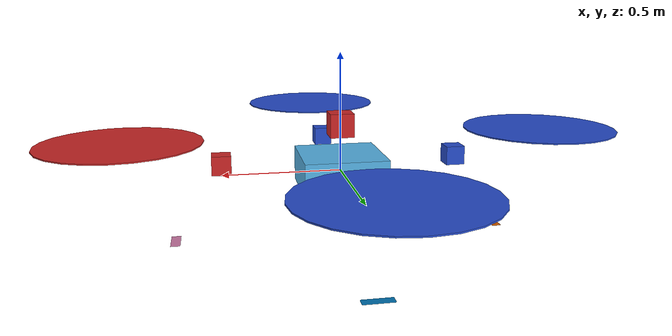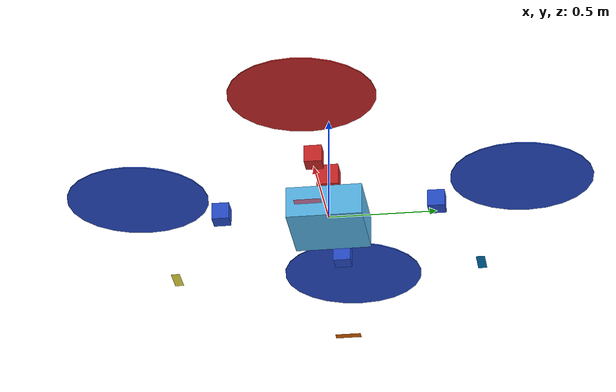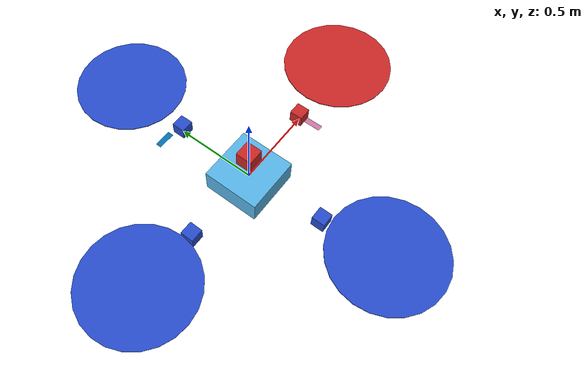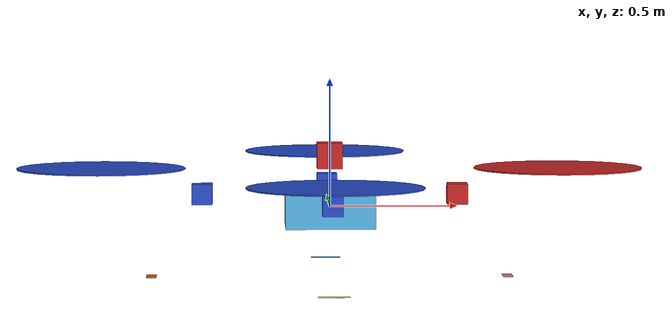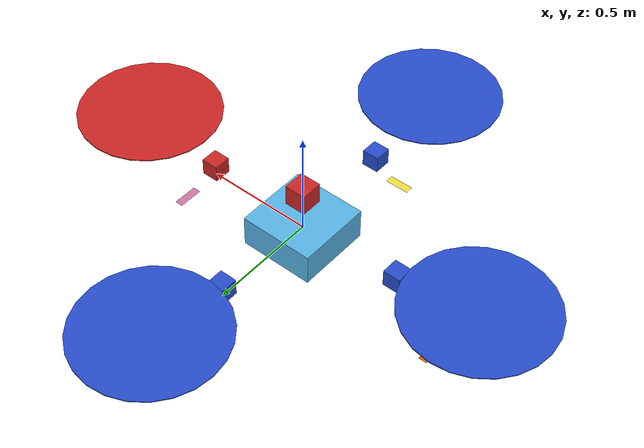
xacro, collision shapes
<?xml version="1.0"?>

<robot name="morus" xmlns:xacro="http://ros.org/wiki/xacro">
  <!-- Properties -->
  <xacro:arg name="name" default="drone" />
  <xacro:arg name="scale" default="1.0" />
  <xacro:arg name="base_link_name" default="base_link" />
  <xacro:arg name="tf_prefix" default="" />
  <xacro:property name="tf_prefix" value="$(arg tf_prefix)" />
  <xacro:property name="base_link_name" value="$(arg base_link_name)" />
  <xacro:property name="scale_factor" value="$(arg scale)" />

  <xacro:property name="rotor_velocity_slowdown_sim" value="10" />
  <xacro:arg name="custom_mesh_file" default="morus_uav_final.dae" />
  <xacro:property name="mesh_file" value="$(arg custom_mesh_file)" />
  <xacro:property name="mesh_file_mass" value="MORUS_mass.dae" />
  <xacro:property name="mass" value="${1 * scale_factor}" />  <!-- [kg] -->

  <xacro:property name="body_width" value="${0.35 * scale_factor}" />
  <xacro:property name="body_height" value="${0.15 * scale_factor}" />
  <xacro:property name="mass_rotor" value="${0.2 * scale_factor}" /> <!-- [kg] -->
  <xacro:property name="arm_length" value="${0.65 * scale_factor}" />
  <xacro:property name="arm_offset" value="${0.175 * scale_factor}" />
  <xacro:property name="prop_ver_offset" value="${0.15 * scale_factor}" />
  <xacro:property name="prop_long_offset" value="${0.07 * scale_factor}" />

  <xacro:property name="radius_rotor" value="${0.33 * scale_factor}" />
  <xacro:property name="motor_constant" value="${0.000456874 * scale_factor}" /> <!-- [kg*m/s^2] -->
  <xacro:property name="moment_constant" value="${0.025 * scale_factor}" />
  <xacro:property name="time_constant_up" value="0.2" />
  <xacro:property name="time_constant_down" value="0.2" />
  <xacro:property name="max_rot_velocity" value="838" /> <!-- [rad/s] -->

  <xacro:property name="rotor_drag_coefficient" value="0.0" />
  <xacro:property name="rolling_moment_coefficient" value="0.00001" />

  <xacro:property name="movable_mass_mass" value="${1 * scale_factor}" />
  <xacro:property name="movable_mass_dimension" value="${0.08 * scale_factor}" />
  <xacro:property name="movable_mass_offset" value="${0.05 * scale_factor}" />

  <xacro:property name="imu_mass" value="${0.02 * scale_factor}"/>
  <xacro:property name="imu_size" value="${0.01 * scale_factor}"/>

  <xacro:property name="sin45" value="0.7071" />
  <xacro:property name="cos45" value="0.7071" />
  <xacro:property name="PI" value="3.14" />

  <!-- Property Blocks -->
  <xacro:property name="body_inertia">
    <!--inertia ixx="8.66" ixy="0.0" ixz="0.0" iyy="8.66" iyz="0.0" izz="12.0" /!-->
    <inertia ixx="5.5" ixy="0.0" ixz="0.0" iyy="5.5" iyz="0.0" izz="6.5" />
  </xacro:property>
  <!-- inertia of a single rotor, assuming it is a cuboid. Height=3mm, width=15mm -->
  <xacro:property name="rotor_inertia">
    <inertia
    ixx="${1/12 * mass_rotor * (0.015 * 0.015 + 0.003 * 0.003) * rotor_velocity_slowdown_sim}"
    iyy="${1/12 * mass_rotor * (4 * radius_rotor * radius_rotor + 0.003 * 0.003) * rotor_velocity_slowdown_sim}"
    izz="${1/12 * mass_rotor * (4 * radius_rotor * radius_rotor + 0.015 * 0.015) * rotor_velocity_slowdown_sim}"
    ixy="0.0" ixz="0.0"  iyz="0.0" /> <!-- [kg*m^2] [kg*m^2] [kg*m^2] [kg*m^2] [kg*m^2] [kg*m^2] -->
  </xacro:property>

  <!-- inertia of a movable mass, assuming it is a cube. The formula is I=ms^2/6 where "s" is length of one side
   of the cube and "m" is its mass-->

  <xacro:property name="movable_mass_inertia">
     <inertia
     ixx="${(movable_mass_mass * movable_mass_dimension * movable_mass_dimension)/6}"
     iyy="${(movable_mass_mass * movable_mass_dimension * movable_mass_dimension)/6}"
     izz="${(movable_mass_mass * movable_mass_dimension * movable_mass_dimension)/6}"
     ixy="0.0" ixz="0.0"  iyz="0.0" /> <!-- [kg*m^2] [kg*m^2] [kg*m^2] [kg*m^2] [kg*m^2] [kg*m^2] -->
  </xacro:property>

  <xacro:property name="imu_inertia">
    <inertia
    ixx="${(imu_mass * imu_size * imu_size)/6}"
    iyy="${(imu_mass * imu_size * imu_size)/6}"
    izz="${(imu_mass * imu_size * imu_size)/6}"
    ixy="0.0" ixz="0.0"  iyz="0.0" /> <!-- [kg*m^2] [kg*m^2] [kg*m^2] [kg*m^2] [kg*m^2] [kg*m^2] -->
  </xacro:property>

  <!-- Included URDF Files -->
  <xacro:include filename="$(find morus_description)/urdf/multirotor_base.urdf.xacro" />

  <!-- Instantiate multirotor_base_macro once-->
  <xacro:multirotor_base_macro
    robot_namespace="$(arg name)"
    mass="${mass}"
    body_width="${body_width}"
    body_height="${body_height}"
    mesh_file="${mesh_file}"
    mesh_file_mass="${mesh_file_mass}"
    scale_factor="${scale_factor}"
    base_link_name="${base_link_name}"
    tf_prefix="${tf_prefix}">
    <xacro:insert_block name="body_inertia" />
  </xacro:multirotor_base_macro>

 <!-- Instantiate rotors -->
  <xacro:vertical_rotor
    robot_namespace="$(arg name)"
    suffix="front"
    direction="cw"
    motor_constant="${motor_constant}"
    moment_constant="${moment_constant}"
    parent="${base_link_name}"
    tf_prefix="${tf_prefix}"
    mass_rotor="${mass_rotor}"
    radius_rotor="${radius_rotor}"
    time_constant_up="${time_constant_up}"
    time_constant_down="${time_constant_down}"
    max_rot_velocity="${max_rot_velocity}"
    motor_number="0"
    rotor_drag_coefficient="${rotor_drag_coefficient}"
    rolling_moment_coefficient="${rolling_moment_coefficient}"
    color="Red">
    <origin xyz="${arm_length+prop_long_offset+arm_offset} 0 ${prop_ver_offset}" rpy="0 0 0" />
    <xacro:insert_block name="rotor_inertia" />
  </xacro:vertical_rotor>

  <xacro:vertical_rotor
    robot_namespace="$(arg name)"
    suffix="left"
    direction="ccw"
    motor_constant="${motor_constant}"
    moment_constant="${moment_constant}"
    parent="${base_link_name}"
    tf_prefix="${tf_prefix}"
    mass_rotor="${mass_rotor}"
    radius_rotor="${radius_rotor}"
    time_constant_up="${time_constant_up}"
    time_constant_down="${time_constant_down}"
    max_rot_velocity="${max_rot_velocity}"
    motor_number="1"
    rotor_drag_coefficient="${rotor_drag_coefficient}"
    rolling_moment_coefficient="${rolling_moment_coefficient}"
    color="Blue">
    <origin xyz="0 ${arm_length+prop_long_offset+arm_offset} ${prop_ver_offset}" rpy="0 0 0" />
    <xacro:insert_block name="rotor_inertia" />
  </xacro:vertical_rotor>

  <xacro:vertical_rotor
    robot_namespace="$(arg name)"
    suffix="back"
    direction="cw"
    motor_constant="${motor_constant}"
    moment_constant="${moment_constant}"
    parent="${base_link_name}"
    tf_prefix="${tf_prefix}"
    mass_rotor="${mass_rotor}"
    radius_rotor="${radius_rotor}"
    time_constant_up="${time_constant_up}"
    time_constant_down="${time_constant_down}"
    max_rot_velocity="${max_rot_velocity}"
    motor_number="2"
    rotor_drag_coefficient="${rotor_drag_coefficient}"
    rolling_moment_coefficient="${rolling_moment_coefficient}"
    color="Blue">
    <origin xyz="${-(arm_length+prop_long_offset+arm_offset)} 0 ${prop_ver_offset}" rpy="0 0 0" />
    <xacro:insert_block name="rotor_inertia" />
  </xacro:vertical_rotor>

  <xacro:vertical_rotor
    robot_namespace="$(arg name)"
    suffix="right"
    direction="ccw"
    motor_constant="${motor_constant}"
    moment_constant="${moment_constant}"
    parent="${base_link_name}"
    tf_prefix="${tf_prefix}"
    mass_rotor="${mass_rotor}"
    radius_rotor="${radius_rotor}"
    time_constant_up="${time_constant_up}"
    time_constant_down="${time_constant_down}"
    max_rot_velocity="${max_rot_velocity}"
    motor_number="3"
    rotor_drag_coefficient="${rotor_drag_coefficient}"
    rolling_moment_coefficient="${rolling_moment_coefficient}"
    color="Blue">
    <origin xyz="0 ${-(arm_length+prop_long_offset+arm_offset)} ${prop_ver_offset}" rpy="0 0 0" />
    <xacro:insert_block name="rotor_inertia" />
  </xacro:vertical_rotor>

  <!-- Instantiate movable mass 0-->
  <xacro:movable_mass
    mass_number="0"
    parent="${base_link_name}"
    tf_prefix="${tf_prefix}"
    mass="${movable_mass_mass}"
    dimension="${movable_mass_dimension}"
    color="Red"
    x_axis="1"
    y_axis="0"
    z_axis="0"
    orientation="${PI}">
    <origin xyz="${(arm_length/2+arm_offset)} 0.0 ${movable_mass_offset}" rpy="0 0 0" />
    <xacro:insert_block name="movable_mass_inertia"/>
  </xacro:movable_mass>

  <!-- Instantiate movable mass 1 -->
  <xacro:movable_mass
    mass_number="1"
    parent="${base_link_name}"
    tf_prefix="${tf_prefix}"
    mass="${movable_mass_mass}"
    dimension="${movable_mass_dimension}"
    color="Blue"
    x_axis="0"
    y_axis="1"
    z_axis="0"
    orientation="${PI/2}">
    <origin xyz="0.0 ${(arm_length/2+arm_offset)} ${movable_mass_offset}" rpy="0 0 0" />
    <xacro:insert_block name="movable_mass_inertia"/>
  </xacro:movable_mass>

  <!-- Instantiate movable mass 2-->
  <xacro:movable_mass
    mass_number="2"
    parent="${base_link_name}"
    tf_prefix="${tf_prefix}"
    mass="${movable_mass_mass}"
    dimension="${movable_mass_dimension}"
    color="Blue"
    x_axis="-1"
    y_axis="0"
    z_axis="0"
    orientation="${PI}">
    <origin xyz="${-(arm_length/2+arm_offset)} 0.0 ${movable_mass_offset}" rpy="0 0 0" />
    <xacro:insert_block name="movable_mass_inertia"/>
  </xacro:movable_mass>

  <!-- Instantiate movable mass 3 -->
  <xacro:movable_mass
    mass_number="3"
    parent="${base_link_name}"
    tf_prefix="${tf_prefix}"
    mass="${movable_mass_mass}"
    dimension="${movable_mass_dimension}"
    color="Blue"
    x_axis="0"
    y_axis="-1"
    z_axis="0"
    orientation="${PI/2}">
    <origin xyz="0.0 ${-(arm_length/2+arm_offset)} ${movable_mass_offset}" rpy="0 0 0" />
    <xacro:insert_block name="movable_mass_inertia"/>
  </xacro:movable_mass>

  <xacro:transmisija
    trans_number="0"
    joint_name="stick_to_movable_mass_0">
  </xacro:transmisija>

  <xacro:transmisija
    trans_number="1"
    joint_name="stick_to_movable_mass_1">
  </xacro:transmisija>

  <xacro:transmisija
    trans_number="2"
    joint_name="stick_to_movable_mass_2">
  </xacro:transmisija>

  <xacro:transmisija
    trans_number="3"
    joint_name="stick_to_movable_mass_3">
  </xacro:transmisija>

  <xacro:property name="land_gear_inertia">
    <inertia
    ixx="1e-6"
    iyy="1e-6"
    izz="1e-6"
    ixy="0.0" ixz="0.0"  iyz="0.0" /> <!-- [kg*m^2] [kg*m^2] [kg*m^2] [kg*m^2] [kg*m^2] [kg*m^2] -->
  </xacro:property>

  <xacro:landing_gear
      parent="${base_link_name}"
      tf_prefix="${tf_prefix}"
      gear_num = "1"
      mass = "${1e-6 * scale_factor}"
      dim_x = "${0.12 * scale_factor}"
      dim_y = "${0.04 * scale_factor}"
      dim_z = "${0.0001 * scale_factor}">
      <origin xyz="0 ${-0.7 * scale_factor} ${-0.275 * scale_factor}" rpy="0 0 0" />
      <xacro:insert_block name="land_gear_inertia"/>
  </xacro:landing_gear>

  <xacro:landing_gear
      parent="${base_link_name}"
      tf_prefix="${tf_prefix}"
      gear_num = "2"
      mass = "${1e-6 * scale_factor}"
      dim_x = "${0.12 * scale_factor}"
      dim_y = "${0.04 * scale_factor}"
      dim_z = "${0.0001 * scale_factor}">
      <origin xyz="0 ${0.7 * scale_factor} ${-0.275 * scale_factor}" rpy="0 0 0" />
      <xacro:insert_block name="land_gear_inertia"/>
  </xacro:landing_gear>

  <xacro:landing_gear
      parent="${base_link_name}"
      tf_prefix="${tf_prefix}"
      gear_num = "3"
      mass = "${1e-6 * scale_factor}"
      dim_x = "${0.12 * scale_factor}"
      dim_y = "${0.04 * scale_factor}"
      dim_z = "${0.0001 * scale_factor}">
      <origin xyz="${-0.7 * scale_factor} 0 ${-0.275 * scale_factor}" rpy="0 0 1.57" />
      <xacro:insert_block name="land_gear_inertia"/>
  </xacro:landing_gear>

  <xacro:landing_gear
      parent="${base_link_name}"
      tf_prefix="${tf_prefix}"
      gear_num = "4"
      mass = "${1e-6 * scale_factor}"
      dim_x = "${0.12 * scale_factor}"
      dim_y = "${0.04 * scale_factor}"
      dim_z = "${0.0001 * scale_factor}">
      <origin xyz="${0.7 * scale_factor} 0.0 ${-0.275 * scale_factor}" rpy="0 0 1.57" />
      <xacro:insert_block name="land_gear_inertia"/>
  </xacro:landing_gear>

  <!-- Instantiate camera -->
  <xacro:camera_macro
    robot_namespace="$(arg name)"
    scale_factor="${scale_factor}"
    base_link_name="${base_link_name}"
    tf_prefix="${tf_prefix}">
  </xacro:camera_macro>

</robot>

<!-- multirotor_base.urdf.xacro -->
<robot xmlns:xacro="http://ros.org/wiki/xacro">
  <!-- Helper property to create link names with tf_prefix -->
  <xacro:property name="link_prefix" value="${tf_prefix}" />

  <!-- Main multirotor link -->
  <xacro:macro name="multirotor_base_macro"
    params="robot_namespace mass body_width body_height mesh_file mesh_file_mass scale_factor base_link_name tf_prefix *inertia">

    <!-- Create link names with tf_prefix -->
    <xacro:if value="${tf_prefix != ''}">
      <xacro:property name="prefixed_base_link" value="${tf_prefix}/${base_link_name}" />
      <xacro:property name="prefixed_base_link_inertia" value="${tf_prefix}/${base_link_name}_inertia" />
      <xacro:property name="prefixed_imu_link" value="${tf_prefix}/imu_link" />
    </xacro:if>
    <xacro:unless value="${tf_prefix != ''}">
      <xacro:property name="prefixed_base_link" value="${base_link_name}" />
      <xacro:property name="prefixed_base_link_inertia" value="${base_link_name}_inertia" />
      <xacro:property name="prefixed_imu_link" value="imu_link" />
    </xacro:unless>

    <link name="${prefixed_base_link}"></link>
    <joint name="base_joint" type="fixed">
      <origin xyz="0 0 0" rpy="0 0 0" />
      <parent link="${prefixed_base_link}" />
      <child link="${prefixed_base_link_inertia}" />
    </joint>
    <link name="${prefixed_base_link_inertia}">
      <inertial>
        <mass value="${mass}" />  <!-- [kg] -->
        <origin xyz="0 0 0" />
        <xacro:insert_block name="inertia" />
      </inertial>

      <visual>
        <origin xyz="0 0 ${-0.65 * scale_factor}" rpy="0 0 0" />
        <geometry>
          <mesh filename="package://morus_description/meshes/${mesh_file}"
            scale="${0.001 * scale_factor} ${0.001 * scale_factor} ${0.001 * scale_factor}" />
          <!--box size="${body_width} ${body_width} ${body_height}"/-->
        </geometry>
      </visual>

      <collision>
        <origin xyz="0 0 0" rpy="0 0 0" />
        <geometry>
          <box size="${body_width} ${body_width} ${body_height}" />
        </geometry>
      </collision>
    </link>

    <!-- IMU -->
    <link name="${prefixed_imu_link}">
      <inertial>
        <inertia ixx="0.00001" ixy="0.0" ixz="0.0" iyy="0.00001" iyz="0.0"
          izz="0.00001" />
        <mass value="${0.01 * scale_factor}" />  <!-- [kg] -->
        <origin xyz="0 0 0" rpy="0 0 0" />
      </inertial>
    </link>
    <!-- IMU joint -->
    <joint name="imu_joint" type="revolute">
      <!--origin xyz="0 0 0" rpy="3.1416 0 0" / -->
      <parent link="${prefixed_base_link}" />
      <child link="${prefixed_imu_link}" />
      <limit upper="0" lower="0" effort="0" velocity="0" />
    </joint>

    <!-- attach multirotor_base_plugin to the base_link -->
    <gazebo>
      <plugin filename="librotors_gazebo_multirotor_base_plugin.so" name="rosbag">
        <robotNamespace>$(arg name)</robotNamespace>
        <linkName>${prefixed_base_link}</linkName>
        <rotorVelocitySlowdownSim>${rotor_velocity_slowdown_sim}</rotorVelocitySlowdownSim>
      </plugin>
    </gazebo>
  </xacro:macro>

  <!-- Macro file for movable mass. It defines joint between mass and stick, and link which defines actual mass. Stick
  is defined in other macro file-->
  <xacro:macro name="movable_mass" params="mass_number parent tf_prefix mass dimension color x_axis y_axis z_axis orientation *origin *inertia">
    <!-- Create prefixed link name -->
    <xacro:if value="${tf_prefix != ''}">
      <xacro:property name="prefixed_movable_mass" value="${tf_prefix}/movable_mass_${mass_number}" />
      <xacro:property name="prefixed_parent" value="${tf_prefix}/${parent}" />
    </xacro:if>
    <xacro:unless value="${tf_prefix != ''}">
      <xacro:property name="prefixed_movable_mass" value="movable_mass_${mass_number}" />
      <xacro:property name="prefixed_parent" value="${parent}" />
    </xacro:unless>

    <joint name="stick_to_movable_mass_${mass_number}" type="prismatic">
      <xacro:insert_block name="origin"/>
      <axis xyz="${x_axis} ${y_axis} ${z_axis}"/>
      <parent link="${prefixed_parent}"/>
      <child link="${prefixed_movable_mass}"/>
      <limit lower="${-0.3 * scale_factor}" upper="${0.3 * scale_factor}" effort="10000" velocity="20"/>
      <dynamics damping="10" />  <!--friction="0.1" used only in Gazebo >= 5.0, damping is the viscous friction damping,
       i.e. Ft = damping * v -->
    </joint>
    <link name="${prefixed_movable_mass}">
      <visual>
        <!--origin rpy="0 0 ${orientation}" xyz="0 0 ${0*movable_mass_dimension/2}"/-->
        <origin rpy="0 0 ${orientation}" xyz="0 0 ${-0.05 * scale_factor}"/>
        <geometry>
          <!--mesh filename="package://morus_description/meshes/${mesh_file_mass}"
            scale="1 1 1" /-->
          <box size="${1*dimension} ${1*dimension} ${1*dimension}"/>
        </geometry>
      </visual>
      <collision>
        <origin rpy="0 0 0" xyz="0 0 ${0*movable_mass_dimension/2}"/>
        <geometry>
          <box size="${dimension} ${dimension} ${dimension}"/>
        </geometry>
      </collision>
      <inertial>
        <origin rpy="0 0 0" xyz="0 0 ${0*movable_mass_dimension/2}"/>
        <mass value="${mass}"/>
        <xacro:insert_block name="inertia"/>
      </inertial>
    </link>

    <gazebo reference="${prefixed_movable_mass}">
      <material>Gazebo/${color}</material>
    </gazebo>
  </xacro:macro>

  <!-- Rotor joint and link -->
  <xacro:macro name="vertical_rotor"
    params="robot_namespace suffix direction motor_constant moment_constant parent tf_prefix mass_rotor radius_rotor time_constant_up time_constant_down max_rot_velocity motor_number rotor_drag_coefficient rolling_moment_coefficient color *origin *inertia">

    <!-- Create prefixed link names -->
    <xacro:if value="${tf_prefix != ''}">
      <xacro:property name="prefixed_rotor" value="${tf_prefix}/rotor_${motor_number}" />
      <xacro:property name="prefixed_parent" value="${tf_prefix}/${parent}" />
    </xacro:if>
    <xacro:unless value="${tf_prefix != ''}">
      <xacro:property name="prefixed_rotor" value="rotor_${motor_number}" />
      <xacro:property name="prefixed_parent" value="${parent}" />
    </xacro:unless>

    <joint name="rotor_${motor_number}_joint" type="continuous">
      <xacro:insert_block name="origin" />
      <axis xyz="0 0 1" />
      <!-- TODO(ff): not currently set because it's not yet supported -->
      <parent link="${prefixed_parent}" />
      <child link="${prefixed_rotor}" />

    </joint>
    <!-- TODO(ff): not currently set because it's not yet supported -->
    <link name="${prefixed_rotor}">
      <inertial>
        <mass value="${mass_rotor}" /> <!-- [kg] -->
        <xacro:insert_block name="inertia" />
      </inertial>
      <visual>
        <geometry>

          <mesh filename="package://morus_description/meshes/propeller_${direction}.dae"
            scale="${0.0025 * scale_factor} ${0.0025 * scale_factor} ${0.0025 * scale_factor}" />
        </geometry>
      </visual>
      <collision>
        <geometry>
          <cylinder length="${0.005 * scale_factor}" radius="${radius_rotor}" />
        </geometry>
      </collision>
    </link>
    <gazebo>
      <plugin name="${suffix}_motor_model" filename="librotors_gazebo_motor_model.so">
        <jointName>rotor_${motor_number}_joint</jointName>
        <linkName>${prefixed_rotor}</linkName>
        <turningDirection>${direction}</turningDirection>
        <timeConstantUp>${time_constant_up}</timeConstantUp>
        <timeConstantDown>${time_constant_down}</timeConstantDown>
        <maxRotVelocity>${max_rot_velocity}</maxRotVelocity>
        <motorConstant>${motor_constant}</motorConstant>
        <momentConstant>${moment_constant}</momentConstant>
        <commandTopic>${robot_namespace}/command/motors</commandTopic>
        <motorNumber>${motor_number}</motorNumber>
        <rotorDragCoefficient>${rotor_drag_coefficient}</rotorDragCoefficient>
        <rollingMomentCoefficient>${rolling_moment_coefficient}</rollingMomentCoefficient>
        <motorVelocityTopic>${robot_namespace}/motor_vel/${motor_number}</motorVelocityTopic>
        <rotorVelocitySlowdownSim>${rotor_velocity_slowdown_sim}</rotorVelocitySlowdownSim>
      </plugin>
    </gazebo>
    <gazebo reference="${prefixed_rotor}">
      <material>Gazebo/${color}</material>
    </gazebo>
  </xacro:macro>

  <xacro:macro name="transmisija" params="trans_number joint_name">
    <transmission name="transmission_${trans_number}">
      <type>transmission_interface/SimpleTransmission</type>
      <joint name="${joint_name}">
        <hardwareInterface>EffortJointInterface</hardwareInterface>
      </joint>
      <actuator name="motor_${trans_number}">
        <hardwareInterface>EffortActuatorInterface</hardwareInterface>
        <mechanicalReduction>100</mechanicalReduction>
      </actuator>
    </transmission>
  </xacro:macro>

  <xacro:macro name="landing_gear" params="gear_num parent tf_prefix mass dim_x dim_y dim_z *origin *inertia">
    <!-- Create prefixed link names -->
    <xacro:if value="${tf_prefix != ''}">
      <xacro:property name="prefixed_landing_gear" value="${tf_prefix}/land_gear_${gear_num}" />
      <xacro:property name="prefixed_parent" value="${tf_prefix}/${parent}" />
    </xacro:if>
    <xacro:unless value="${tf_prefix != ''}">
      <xacro:property name="prefixed_landing_gear" value="land_gear_${gear_num}" />
      <xacro:property name="prefixed_parent" value="${parent}" />
    </xacro:unless>

    <joint name="land_gear_${gear_num}" type="fixed">
      <xacro:insert_block name="origin"/>
      <axis xyz="0 0 1"/>
      <parent link="${prefixed_parent}"/>
      <child link="${prefixed_landing_gear}"/>
    </joint>
    <link name="${prefixed_landing_gear}">
      <collision>
        <origin rpy="0 0 0" xyz="0 0 0"/>
        <geometry>
          <box size="${dim_x} ${dim_y} ${dim_z}"/>
        </geometry>
      </collision>
      <inertial>
         <origin rpy="0 0 0" xyz="0 0 0"/>
        <mass value="${mass}"/>
        <xacro:insert_block name="inertia"/>
      </inertial>
    </link>

  </xacro:macro>

   <!-- camera -->
  <xacro:macro name="camera_macro" params="robot_namespace scale_factor base_link_name tf_prefix">
    <!-- Create prefixed link names -->
    <xacro:if value="${tf_prefix != ''}">
      <xacro:property name="prefixed_camera_link" value="${tf_prefix}/camera_link" />
      <xacro:property name="prefixed_base_link" value="${tf_prefix}/${base_link_name}" />
    </xacro:if>
    <xacro:unless value="${tf_prefix != ''}">
      <xacro:property name="prefixed_camera_link" value="camera_link" />
      <xacro:property name="prefixed_base_link" value="${base_link_name}" />
    </xacro:unless>

    <!-- joint -->
    <joint name="camera_joint" type="fixed">
      <axis xyz="0 1 0" />
      <origin xyz="0 0 ${0.2 * scale_factor}" rpy="0 0 0" />
      <parent link="${prefixed_base_link}" />
      <child link="${prefixed_camera_link}" />
    </joint>

    <!-- link -->
    <link name="${prefixed_camera_link}">
      <collision>
        <origin xyz="0 0 0" rpy="0 0 0" />
        <geometry>
          <box size="${0.1 * scale_factor} ${0.1 * scale_factor} ${0.1 * scale_factor}" />
        </geometry>
      </collision>

      <visual>
        <origin xyz="0 0 0" rpy="0 0 0" />
        <geometry>
          <box size="${0.1 * scale_factor} ${0.1 * scale_factor} ${0.1 * scale_factor}" />
        </geometry>
        <material name="red" />
      </visual>

      <inertial>
        <mass value="${1e-5 * scale_factor}" />
        <origin xyz="0 0 0" rpy="0 0 0" />
        <inertia ixx="1e-6" ixy="0" ixz="0" iyy="1e-6" iyz="0" izz="1e-6" />
      </inertial>
    </link>
    <gazebo reference="${prefixed_camera_link}">
      <sensor type="camera" name="camera1">
        <update_rate>30.0</update_rate>
        <camera name="head">
          <horizontal_fov>2</horizontal_fov>
          <image>
            <width>800</width>
            <height>600</height>
            <format>R8G8B8</format>
          </image>
          <clip>
            <near>0.02</near>
            <far>300</far>
          </clip>
          <noise>
            <type>gaussian</type>
            <mean>0.0</mean>
            <stddev>0.007</stddev>
          </noise>
        </camera>
        <plugin name="camera_controller" filename="libgazebo_ros_camera.so">
          <alwaysOn>true</alwaysOn>
          <updateRate>0.0</updateRate>
          <cameraName>${robot_namespace}/camera1</cameraName>
          <imageTopicName>image_raw</imageTopicName>
          <cameraInfoTopicName>camera_info</cameraInfoTopicName>
          <frameName>${prefixed_camera_link}</frameName>
          <hackBaseline>0.07</hackBaseline>
          <distortionK1>0.0</distortionK1>
          <distortionK2>0.0</distortionK2>
          <distortionK3>0.0</distortionK3>
          <distortionT1>0.0</distortionT1>
          <distortionT2>0.0</distortionT2>
        </plugin>
      </sensor>
    </gazebo>
  </xacro:macro>

</robot>
